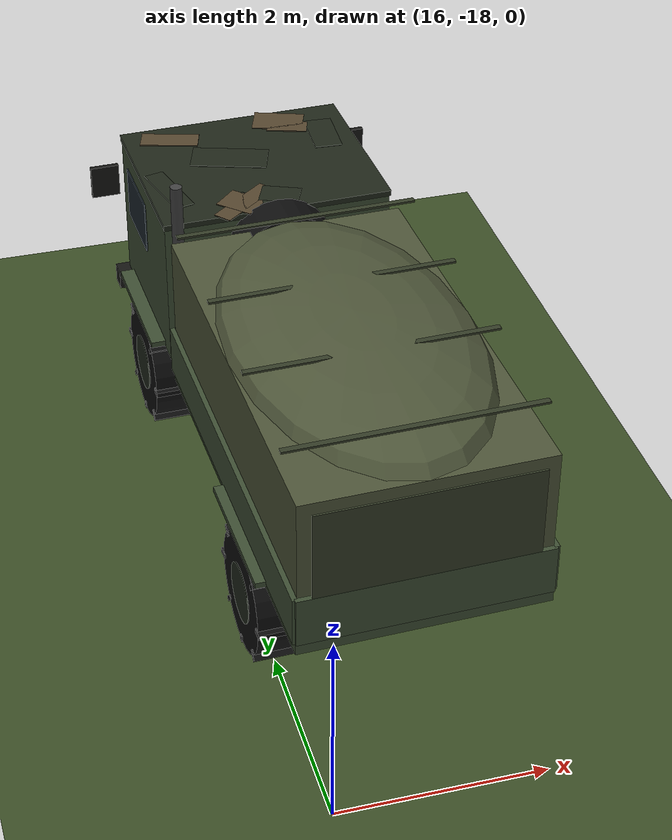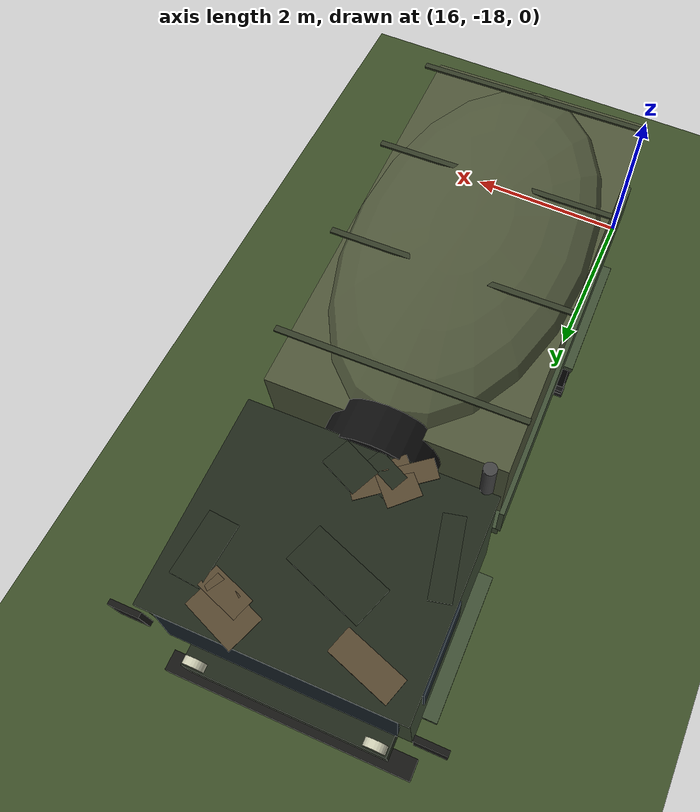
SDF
<sdf version="1.11">
 <world name="hive_base">
  <model name="ground_plane">
   <static>true</static>
   <link name="link">
    <collision name="collision">
     <geometry><plane><normal>0 0 1</normal><size>1000 1000</size></plane></geometry>
     <surface><friction><ode><mu>1.0</mu><mu2>1.0</mu2></ode></friction></surface>
    </collision>
    <visual name="visual">
     <geometry><plane><normal>0 0 1</normal><size>1000 1000</size></plane></geometry>
     <material>
      <ambient>0.23 0.3 0.15 1</ambient>
      <diffuse>0.23 0.3 0.15 1</diffuse>
      <specular>0.05 0.05 0.05 1</specular>
     </material>
    </visual>
   </link>
  </model>
  <model name="tgb40_1">
   <static>true</static>
   <pose>17 -14 0 0 0 1.6</pose>
   <link name="link">
    <visual name="v1">
     <pose>2.35 -1.05 0.6 1.571 0 0</pose>
     <geometry><cylinder><radius>0.6</radius><length>0.45</length></cylinder></geometry>
     <material>
      <ambient>0.05 0.05 0.05 1</ambient>
      <diffuse>0.05 0.05 0.05 1</diffuse>
      <specular>0.05 0.05 0.05 1</specular>
     </material>
    </visual>
    <collision name="c1">
     <pose>2.35 -1.05 0.6 1.571 0 0</pose>
     <geometry><cylinder><radius>0.6</radius><length>0.45</length></cylinder></geometry>
    </collision>
    <visual name="v2">
     <pose>2.35 -1.05 0.6 1.571 0 0</pose>
     <geometry><cylinder><radius>0.3</radius><length>0.47</length></cylinder></geometry>
     <material>
      <ambient>0.12 0.15 0.1 1</ambient>
      <diffuse>0.12 0.15 0.1 1</diffuse>
      <specular>0.05 0.05 0.05 1</specular>
     </material>
    </visual>
    <visual name="v3">
     <pose>2.95 -1.05 0.6 0 -0 0</pose>
     <geometry><box><size>0.12 0.47 0.05</size></box></geometry>
     <material>
      <ambient>0.05 0.05 0.05 1</ambient>
      <diffuse>0.05 0.05 0.05 1</diffuse>
      <specular>0.05 0.05 0.05 1</specular>
     </material>
     <cast_shadows>false</cast_shadows>
    </visual>
    <visual name="v4">
     <pose>2.774 -1.05 1.024 0 -0.785 0</pose>
     <geometry><box><size>0.12 0.47 0.05</size></box></geometry>
     <material>
      <ambient>0.05 0.05 0.05 1</ambient>
      <diffuse>0.05 0.05 0.05 1</diffuse>
      <specular>0.05 0.05 0.05 1</specular>
     </material>
     <cast_shadows>false</cast_shadows>
    </visual>
    <visual name="v5">
     <pose>2.35 -1.05 1.2 0 -1.571 0</pose>
     <geometry><box><size>0.12 0.47 0.05</size></box></geometry>
     <material>
      <ambient>0.05 0.05 0.05 1</ambient>
      <diffuse>0.05 0.05 0.05 1</diffuse>
      <specular>0.05 0.05 0.05 1</specular>
     </material>
     <cast_shadows>false</cast_shadows>
    </visual>
    <visual name="v6">
     <pose>1.926 -1.05 1.024 0 -2.356 0</pose>
     <geometry><box><size>0.12 0.47 0.05</size></box></geometry>
     <material>
      <ambient>0.05 0.05 0.05 1</ambient>
      <diffuse>0.05 0.05 0.05 1</diffuse>
      <specular>0.05 0.05 0.05 1</specular>
     </material>
     <cast_shadows>false</cast_shadows>
    </visual>
    <visual name="v7">
     <pose>1.75 -1.05 0.6 0 -3.142 0</pose>
     <geometry><box><size>0.12 0.47 0.05</size></box></geometry>
     <material>
      <ambient>0.05 0.05 0.05 1</ambient>
      <diffuse>0.05 0.05 0.05 1</diffuse>
      <specular>0.05 0.05 0.05 1</specular>
     </material>
     <cast_shadows>false</cast_shadows>
    </visual>
    <visual name="v8">
     <pose>1.926 -1.05 0.176 0 -3.927 0</pose>
     <geometry><box><size>0.12 0.47 0.05</size></box></geometry>
     <material>
      <ambient>0.05 0.05 0.05 1</ambient>
      <diffuse>0.05 0.05 0.05 1</diffuse>
      <specular>0.05 0.05 0.05 1</specular>
     </material>
     <cast_shadows>false</cast_shadows>
    </visual>
    <visual name="v9">
     <pose>2.35 -1.05 0 0 -4.712 0</pose>
     <geometry><box><size>0.12 0.47 0.05</size></box></geometry>
     <material>
      <ambient>0.05 0.05 0.05 1</ambient>
      <diffuse>0.05 0.05 0.05 1</diffuse>
      <specular>0.05 0.05 0.05 1</specular>
     </material>
     <cast_shadows>false</cast_shadows>
    </visual>
    <visual name="v10">
     <pose>2.774 -1.05 0.176 0 -5.498 0</pose>
     <geometry><box><size>0.12 0.47 0.05</size></box></geometry>
     <material>
      <ambient>0.05 0.05 0.05 1</ambient>
      <diffuse>0.05 0.05 0.05 1</diffuse>
      <specular>0.05 0.05 0.05 1</specular>
     </material>
     <cast_shadows>false</cast_shadows>
    </visual>
    <visual name="v11">
     <pose>2.35 1.05 0.6 1.571 0 0</pose>
     <geometry><cylinder><radius>0.6</radius><length>0.45</length></cylinder></geometry>
     <material>
      <ambient>0.05 0.05 0.05 1</ambient>
      <diffuse>0.05 0.05 0.05 1</diffuse>
      <specular>0.05 0.05 0.05 1</specular>
     </material>
    </visual>
    <collision name="c11">
     <pose>2.35 1.05 0.6 1.571 0 0</pose>
     <geometry><cylinder><radius>0.6</radius><length>0.45</length></cylinder></geometry>
    </collision>
    <visual name="v12">
     <pose>2.35 1.05 0.6 1.571 0 0</pose>
     <geometry><cylinder><radius>0.3</radius><length>0.47</length></cylinder></geometry>
     <material>
      <ambient>0.12 0.15 0.1 1</ambient>
      <diffuse>0.12 0.15 0.1 1</diffuse>
      <specular>0.05 0.05 0.05 1</specular>
     </material>
    </visual>
    <visual name="v13">
     <pose>2.95 1.05 0.6 0 -0 0</pose>
     <geometry><box><size>0.12 0.47 0.05</size></box></geometry>
     <material>
      <ambient>0.05 0.05 0.05 1</ambient>
      <diffuse>0.05 0.05 0.05 1</diffuse>
      <specular>0.05 0.05 0.05 1</specular>
     </material>
     <cast_shadows>false</cast_shadows>
    </visual>
    <visual name="v14">
     <pose>2.774 1.05 1.024 0 -0.785 0</pose>
     <geometry><box><size>0.12 0.47 0.05</size></box></geometry>
     <material>
      <ambient>0.05 0.05 0.05 1</ambient>
      <diffuse>0.05 0.05 0.05 1</diffuse>
      <specular>0.05 0.05 0.05 1</specular>
     </material>
     <cast_shadows>false</cast_shadows>
    </visual>
    <visual name="v15">
     <pose>2.35 1.05 1.2 0 -1.571 0</pose>
     <geometry><box><size>0.12 0.47 0.05</size></box></geometry>
     <material>
      <ambient>0.05 0.05 0.05 1</ambient>
      <diffuse>0.05 0.05 0.05 1</diffuse>
      <specular>0.05 0.05 0.05 1</specular>
     </material>
     <cast_shadows>false</cast_shadows>
    </visual>
    <visual name="v16">
     <pose>1.926 1.05 1.024 0 -2.356 0</pose>
     <geometry><box><size>0.12 0.47 0.05</size></box></geometry>
     <material>
      <ambient>0.05 0.05 0.05 1</ambient>
      <diffuse>0.05 0.05 0.05 1</diffuse>
      <specular>0.05 0.05 0.05 1</specular>
     </material>
     <cast_shadows>false</cast_shadows>
    </visual>
    <visual name="v17">
     <pose>1.75 1.05 0.6 0 -3.142 0</pose>
     <geometry><box><size>0.12 0.47 0.05</size></box></geometry>
     <material>
      <ambient>0.05 0.05 0.05 1</ambient>
      <diffuse>0.05 0.05 0.05 1</diffuse>
      <specular>0.05 0.05 0.05 1</specular>
     </material>
     <cast_shadows>false</cast_shadows>
    </visual>
    <visual name="v18">
     <pose>1.926 1.05 0.176 0 -3.927 0</pose>
     <geometry><box><size>0.12 0.47 0.05</size></box></geometry>
     <material>
      <ambient>0.05 0.05 0.05 1</ambient>
      <diffuse>0.05 0.05 0.05 1</diffuse>
      <specular>0.05 0.05 0.05 1</specular>
     </material>
     <cast_shadows>false</cast_shadows>
    </visual>
    <visual name="v19">
     <pose>2.35 1.05 0 0 -4.712 0</pose>
     <geometry><box><size>0.12 0.47 0.05</size></box></geometry>
     <material>
      <ambient>0.05 0.05 0.05 1</ambient>
      <diffuse>0.05 0.05 0.05 1</diffuse>
      <specular>0.05 0.05 0.05 1</specular>
     </material>
     <cast_shadows>false</cast_shadows>
    </visual>
    <visual name="v20">
     <pose>2.774 1.05 0.176 0 -5.498 0</pose>
     <geometry><box><size>0.12 0.47 0.05</size></box></geometry>
     <material>
      <ambient>0.05 0.05 0.05 1</ambient>
      <diffuse>0.05 0.05 0.05 1</diffuse>
      <specular>0.05 0.05 0.05 1</specular>
     </material>
     <cast_shadows>false</cast_shadows>
    </visual>
    <visual name="v21">
     <pose>-1.6 -1.05 0.6 1.571 0 0</pose>
     <geometry><cylinder><radius>0.6</radius><length>0.45</length></cylinder></geometry>
     <material>
      <ambient>0.05 0.05 0.05 1</ambient>
      <diffuse>0.05 0.05 0.05 1</diffuse>
      <specular>0.05 0.05 0.05 1</specular>
     </material>
    </visual>
    <collision name="c21">
     <pose>-1.6 -1.05 0.6 1.571 0 0</pose>
     <geometry><cylinder><radius>0.6</radius><length>0.45</length></cylinder></geometry>
    </collision>
    <visual name="v22">
     <pose>-1.6 -1.05 0.6 1.571 0 0</pose>
     <geometry><cylinder><radius>0.3</radius><length>0.47</length></cylinder></geometry>
     <material>
      <ambient>0.12 0.15 0.1 1</ambient>
      <diffuse>0.12 0.15 0.1 1</diffuse>
      <specular>0.05 0.05 0.05 1</specular>
     </material>
    </visual>
    <visual name="v23">
     <pose>-1 -1.05 0.6 0 -0 0</pose>
     <geometry><box><size>0.12 0.47 0.05</size></box></geometry>
     <material>
      <ambient>0.05 0.05 0.05 1</ambient>
      <diffuse>0.05 0.05 0.05 1</diffuse>
      <specular>0.05 0.05 0.05 1</specular>
     </material>
     <cast_shadows>false</cast_shadows>
    </visual>
    <visual name="v24">
     <pose>-1.176 -1.05 1.024 0 -0.785 0</pose>
     <geometry><box><size>0.12 0.47 0.05</size></box></geometry>
     <material>
      <ambient>0.05 0.05 0.05 1</ambient>
      <diffuse>0.05 0.05 0.05 1</diffuse>
      <specular>0.05 0.05 0.05 1</specular>
     </material>
     <cast_shadows>false</cast_shadows>
    </visual>
    <visual name="v25">
     <pose>-1.6 -1.05 1.2 0 -1.571 0</pose>
     <geometry><box><size>0.12 0.47 0.05</size></box></geometry>
     <material>
      <ambient>0.05 0.05 0.05 1</ambient>
      <diffuse>0.05 0.05 0.05 1</diffuse>
      <specular>0.05 0.05 0.05 1</specular>
     </material>
     <cast_shadows>false</cast_shadows>
    </visual>
    <visual name="v26">
     <pose>-2.024 -1.05 1.024 0 -2.356 0</pose>
     <geometry><box><size>0.12 0.47 0.05</size></box></geometry>
     <material>
      <ambient>0.05 0.05 0.05 1</ambient>
      <diffuse>0.05 0.05 0.05 1</diffuse>
      <specular>0.05 0.05 0.05 1</specular>
     </material>
     <cast_shadows>false</cast_shadows>
    </visual>
    <visual name="v27">
     <pose>-2.2 -1.05 0.6 0 -3.142 0</pose>
     <geometry><box><size>0.12 0.47 0.05</size></box></geometry>
     <material>
      <ambient>0.05 0.05 0.05 1</ambient>
      <diffuse>0.05 0.05 0.05 1</diffuse>
      <specular>0.05 0.05 0.05 1</specular>
     </material>
     <cast_shadows>false</cast_shadows>
    </visual>
    <visual name="v28">
     <pose>-2.024 -1.05 0.176 0 -3.927 0</pose>
     <geometry><box><size>0.12 0.47 0.05</size></box></geometry>
     <material>
      <ambient>0.05 0.05 0.05 1</ambient>
      <diffuse>0.05 0.05 0.05 1</diffuse>
      <specular>0.05 0.05 0.05 1</specular>
     </material>
     <cast_shadows>false</cast_shadows>
    </visual>
    <visual name="v29">
     <pose>-1.6 -1.05 0 0 -4.712 0</pose>
     <geometry><box><size>0.12 0.47 0.05</size></box></geometry>
     <material>
      <ambient>0.05 0.05 0.05 1</ambient>
      <diffuse>0.05 0.05 0.05 1</diffuse>
      <specular>0.05 0.05 0.05 1</specular>
     </material>
     <cast_shadows>false</cast_shadows>
    </visual>
    <visual name="v30">
     <pose>-1.176 -1.05 0.176 0 -5.498 0</pose>
     <geometry><box><size>0.12 0.47 0.05</size></box></geometry>
     <material>
      <ambient>0.05 0.05 0.05 1</ambient>
      <diffuse>0.05 0.05 0.05 1</diffuse>
      <specular>0.05 0.05 0.05 1</specular>
     </material>
     <cast_shadows>false</cast_shadows>
    </visual>
    <visual name="v31">
     <pose>-1.6 1.05 0.6 1.571 0 0</pose>
     <geometry><cylinder><radius>0.6</radius><length>0.45</length></cylinder></geometry>
     <material>
      <ambient>0.05 0.05 0.05 1</ambient>
      <diffuse>0.05 0.05 0.05 1</diffuse>
      <specular>0.05 0.05 0.05 1</specular>
     </material>
    </visual>
    <collision name="c31">
     <pose>-1.6 1.05 0.6 1.571 0 0</pose>
     <geometry><cylinder><radius>0.6</radius><length>0.45</length></cylinder></geometry>
    </collision>
    <visual name="v32">
     <pose>-1.6 1.05 0.6 1.571 0 0</pose>
     <geometry><cylinder><radius>0.3</radius><length>0.47</length></cylinder></geometry>
     <material>
      <ambient>0.12 0.15 0.1 1</ambient>
      <diffuse>0.12 0.15 0.1 1</diffuse>
      <specular>0.05 0.05 0.05 1</specular>
     </material>
    </visual>
    <visual name="v33">
     <pose>-1 1.05 0.6 0 -0 0</pose>
     <geometry><box><size>0.12 0.47 0.05</size></box></geometry>
     <material>
      <ambient>0.05 0.05 0.05 1</ambient>
      <diffuse>0.05 0.05 0.05 1</diffuse>
      <specular>0.05 0.05 0.05 1</specular>
     </material>
     <cast_shadows>false</cast_shadows>
    </visual>
    <visual name="v34">
     <pose>-1.176 1.05 1.024 0 -0.785 0</pose>
     <geometry><box><size>0.12 0.47 0.05</size></box></geometry>
     <material>
      <ambient>0.05 0.05 0.05 1</ambient>
      <diffuse>0.05 0.05 0.05 1</diffuse>
      <specular>0.05 0.05 0.05 1</specular>
     </material>
     <cast_shadows>false</cast_shadows>
    </visual>
    <visual name="v35">
     <pose>-1.6 1.05 1.2 0 -1.571 0</pose>
     <geometry><box><size>0.12 0.47 0.05</size></box></geometry>
     <material>
      <ambient>0.05 0.05 0.05 1</ambient>
      <diffuse>0.05 0.05 0.05 1</diffuse>
      <specular>0.05 0.05 0.05 1</specular>
     </material>
     <cast_shadows>false</cast_shadows>
    </visual>
    <visual name="v36">
     <pose>-2.024 1.05 1.024 0 -2.356 0</pose>
     <geometry><box><size>0.12 0.47 0.05</size></box></geometry>
     <material>
      <ambient>0.05 0.05 0.05 1</ambient>
      <diffuse>0.05 0.05 0.05 1</diffuse>
      <specular>0.05 0.05 0.05 1</specular>
     </material>
     <cast_shadows>false</cast_shadows>
    </visual>
    <visual name="v37">
     <pose>-2.2 1.05 0.6 0 -3.142 0</pose>
     <geometry><box><size>0.12 0.47 0.05</size></box></geometry>
     <material>
      <ambient>0.05 0.05 0.05 1</ambient>
      <diffuse>0.05 0.05 0.05 1</diffuse>
      <specular>0.05 0.05 0.05 1</specular>
     </material>
     <cast_shadows>false</cast_shadows>
    </visual>
    <visual name="v38">
     <pose>-2.024 1.05 0.176 0 -3.927 0</pose>
     <geometry><box><size>0.12 0.47 0.05</size></box></geometry>
     <material>
      <ambient>0.05 0.05 0.05 1</ambient>
      <diffuse>0.05 0.05 0.05 1</diffuse>
      <specular>0.05 0.05 0.05 1</specular>
     </material>
     <cast_shadows>false</cast_shadows>
    </visual>
    <visual name="v39">
     <pose>-1.6 1.05 0 0 -4.712 0</pose>
     <geometry><box><size>0.12 0.47 0.05</size></box></geometry>
     <material>
      <ambient>0.05 0.05 0.05 1</ambient>
      <diffuse>0.05 0.05 0.05 1</diffuse>
      <specular>0.05 0.05 0.05 1</specular>
     </material>
     <cast_shadows>false</cast_shadows>
    </visual>
    <visual name="v40">
     <pose>-1.176 1.05 0.176 0 -5.498 0</pose>
     <geometry><box><size>0.12 0.47 0.05</size></box></geometry>
     <material>
      <ambient>0.05 0.05 0.05 1</ambient>
      <diffuse>0.05 0.05 0.05 1</diffuse>
      <specular>0.05 0.05 0.05 1</specular>
     </material>
     <cast_shadows>false</cast_shadows>
    </visual>
    <visual name="v41">
     <pose>0.3 0 1 0 0 0</pose>
     <geometry><box><size>6.2 0.9 0.3</size></box></geometry>
     <material>
      <ambient>0.08 0.08 0.07 1</ambient>
      <diffuse>0.08 0.08 0.07 1</diffuse>
      <specular>0.05 0.05 0.05 1</specular>
     </material>
    </visual>
    <collision name="c41">
     <pose>0.3 0 1 0 0 0</pose>
     <geometry><box><size>6.2 0.9 0.3</size></box></geometry>
    </collision>
    <visual name="v42">
     <pose>2.35 0 0.6 1.571 0 0</pose>
     <geometry><cylinder><radius>0.12</radius><length>2.1</length></cylinder></geometry>
     <material>
      <ambient>0.08 0.08 0.07 1</ambient>
      <diffuse>0.08 0.08 0.07 1</diffuse>
      <specular>0.05 0.05 0.05 1</specular>
     </material>
    </visual>
    <visual name="v43">
     <pose>-1.6 0 0.6 1.571 0 0</pose>
     <geometry><cylinder><radius>0.12</radius><length>2.1</length></cylinder></geometry>
     <material>
      <ambient>0.08 0.08 0.07 1</ambient>
      <diffuse>0.08 0.08 0.07 1</diffuse>
      <specular>0.05 0.05 0.05 1</specular>
     </material>
    </visual>
    <visual name="v44">
     <pose>2.35 -1.05 1.3 0 0 0</pose>
     <geometry><box><size>1.45 0.55 0.06</size></box></geometry>
     <material>
      <ambient>0.24 0.3 0.2 1</ambient>
      <diffuse>0.24 0.3 0.2 1</diffuse>
      <specular>0.05 0.05 0.05 1</specular>
     </material>
    </visual>
    <visual name="v45">
     <pose>2.35 1.05 1.3 0 0 0</pose>
     <geometry><box><size>1.45 0.55 0.06</size></box></geometry>
     <material>
      <ambient>0.24 0.3 0.2 1</ambient>
      <diffuse>0.24 0.3 0.2 1</diffuse>
      <specular>0.05 0.05 0.05 1</specular>
     </material>
    </visual>
    <visual name="v46">
     <pose>-1.6 -1.05 1.3 0 0 0</pose>
     <geometry><box><size>1.45 0.55 0.06</size></box></geometry>
     <material>
      <ambient>0.24 0.3 0.2 1</ambient>
      <diffuse>0.24 0.3 0.2 1</diffuse>
      <specular>0.05 0.05 0.05 1</specular>
     </material>
    </visual>
    <visual name="v47">
     <pose>-1.6 1.05 1.3 0 0 0</pose>
     <geometry><box><size>1.45 0.55 0.06</size></box></geometry>
     <material>
      <ambient>0.24 0.3 0.2 1</ambient>
      <diffuse>0.24 0.3 0.2 1</diffuse>
      <specular>0.05 0.05 0.05 1</specular>
     </material>
    </visual>
    <visual name="v48">
     <pose>2.35 0 2.025 0 0 0</pose>
     <geometry><box><size>1.9 2.35 1.55</size></box></geometry>
     <material>
      <ambient>0.24 0.3 0.2 1</ambient>
      <diffuse>0.24 0.3 0.2 1</diffuse>
      <specular>0.05 0.05 0.05 1</specular>
     </material>
    </visual>
    <collision name="c48">
     <pose>2.35 0 2.025 0 0 0</pose>
     <geometry><box><size>1.9 2.35 1.55</size></box></geometry>
    </collision>
    <visual name="v49">
     <pose>3.4 0 1.3 0 0 0</pose>
     <geometry><box><size>0.25 2.05 0.45</size></box></geometry>
     <material>
      <ambient>0.12 0.15 0.1 1</ambient>
      <diffuse>0.12 0.15 0.1 1</diffuse>
      <specular>0.05 0.05 0.05 1</specular>
     </material>
    </visual>
    <visual name="v50">
     <pose>3.5 0 1 0 0 0</pose>
     <geometry><box><size>0.2 2.55 0.2</size></box></geometry>
     <material>
      <ambient>0.08 0.08 0.07 1</ambient>
      <diffuse>0.08 0.08 0.07 1</diffuse>
      <specular>0.05 0.05 0.05 1</specular>
     </material>
    </visual>
    <visual name="v51">
     <pose>3.31 0 2.375 0 -0.08 0</pose>
     <geometry><box><size>0.05 2.15 0.65</size></box></geometry>
     <material>
      <ambient>0.1 0.14 0.17 1</ambient>
      <diffuse>0.1 0.14 0.17 1</diffuse>
      <specular>0.05 0.05 0.05 1</specular>
     </material>
    </visual>
    <visual name="v52">
     <pose>2.65 -1.18 2.325 0 0 0</pose>
     <geometry><box><size>0.8 0.02 0.55</size></box></geometry>
     <material>
      <ambient>0.1 0.14 0.17 1</ambient>
      <diffuse>0.1 0.14 0.17 1</diffuse>
      <specular>0.05 0.05 0.05 1</specular>
     </material>
    </visual>
    <visual name="v53">
     <pose>3.35 -1.375 2.325 0 0 0</pose>
     <geometry><box><size>0.05 0.3 0.35</size></box></geometry>
     <material>
      <ambient>0.08 0.08 0.07 1</ambient>
      <diffuse>0.08 0.08 0.07 1</diffuse>
      <specular>0.05 0.05 0.05 1</specular>
     </material>
    </visual>
    <visual name="v54">
     <pose>3.47 -0.9 1.55 0 1.571 0</pose>
     <geometry><cylinder><radius>0.11</radius><length>0.08</length></cylinder></geometry>
     <material>
      <ambient>0.8 0.8 0.7 1</ambient>
      <diffuse>0.8 0.8 0.7 1</diffuse>
      <specular>0.05 0.05 0.05 1</specular>
     </material>
    </visual>
    <visual name="v55">
     <pose>2.65 1.18 2.325 0 0 0</pose>
     <geometry><box><size>0.8 0.02 0.55</size></box></geometry>
     <material>
      <ambient>0.1 0.14 0.17 1</ambient>
      <diffuse>0.1 0.14 0.17 1</diffuse>
      <specular>0.05 0.05 0.05 1</specular>
     </material>
    </visual>
    <visual name="v56">
     <pose>3.35 1.375 2.325 0 0 0</pose>
     <geometry><box><size>0.05 0.3 0.35</size></box></geometry>
     <material>
      <ambient>0.08 0.08 0.07 1</ambient>
      <diffuse>0.08 0.08 0.07 1</diffuse>
      <specular>0.05 0.05 0.05 1</specular>
     </material>
    </visual>
    <visual name="v57">
     <pose>3.47 0.9 1.55 0 1.571 0</pose>
     <geometry><cylinder><radius>0.11</radius><length>0.08</length></cylinder></geometry>
     <material>
      <ambient>0.8 0.8 0.7 1</ambient>
      <diffuse>0.8 0.8 0.7 1</diffuse>
      <specular>0.05 0.05 0.05 1</specular>
     </material>
    </visual>
    <visual name="v58">
     <pose>2.35 0 2.83 0 0 0</pose>
     <geometry><box><size>1.95 2.37 0.06</size></box></geometry>
     <material>
      <ambient>0.12 0.15 0.1 1</ambient>
      <diffuse>0.12 0.15 0.1 1</diffuse>
      <specular>0.05 0.05 0.05 1</specular>
     </material>
    </visual>
    <visual name="v59">
     <pose>2.03 0.968 2.87 0 0 0.212</pose>
     <geometry><box><size>0.736 0.202 0.01</size></box></geometry>
     <material>
      <ambient>0.12 0.15 0.1 1</ambient>
      <diffuse>0.12 0.15 0.1 1</diffuse>
      <specular>0.05 0.05 0.05 1</specular>
     </material>
     <cast_shadows>false</cast_shadows>
    </visual>
    <visual name="v60">
     <pose>1.577 0.297 2.87 0 0 2.226</pose>
     <geometry><box><size>0.759 0.194 0.01</size></box></geometry>
     <material>
      <ambient>0.33 0.27 0.18 1</ambient>
      <diffuse>0.33 0.27 0.18 1</diffuse>
      <specular>0.05 0.05 0.05 1</specular>
     </material>
     <cast_shadows>false</cast_shadows>
    </visual>
    <visual name="v61">
     <pose>1.572 0.188 2.87 0 0 1.116</pose>
     <geometry><box><size>0.343 0.276 0.01</size></box></geometry>
     <material>
      <ambient>0.12 0.15 0.1 1</ambient>
      <diffuse>0.12 0.15 0.1 1</diffuse>
      <specular>0.05 0.05 0.05 1</specular>
     </material>
     <cast_shadows>false</cast_shadows>
    </visual>
    <visual name="v62">
     <pose>2.715 -0.876 2.87 0 0 3.058</pose>
     <geometry><box><size>0.585 0.29 0.01</size></box></geometry>
     <material>
      <ambient>0.12 0.15 0.1 1</ambient>
      <diffuse>0.12 0.15 0.1 1</diffuse>
      <specular>0.05 0.05 0.05 1</specular>
     </material>
     <cast_shadows>false</cast_shadows>
    </visual>
    <visual name="v63">
     <pose>1.62 -0.084 2.87 0 0 1.138</pose>
     <geometry><box><size>0.402 0.287 0.01</size></box></geometry>
     <material>
      <ambient>0.12 0.15 0.1 1</ambient>
      <diffuse>0.12 0.15 0.1 1</diffuse>
      <specular>0.05 0.05 0.05 1</specular>
     </material>
     <cast_shadows>false</cast_shadows>
    </visual>
    <visual name="v64">
     <pose>3.102 -0.493 2.87 0 0 1.201</pose>
     <geometry><box><size>0.531 0.341 0.01</size></box></geometry>
     <material>
      <ambient>0.33 0.27 0.18 1</ambient>
      <diffuse>0.33 0.27 0.18 1</diffuse>
      <specular>0.05 0.05 0.05 1</specular>
     </material>
     <cast_shadows>false</cast_shadows>
    </visual>
    <visual name="v65">
     <pose>2.493 0.209 2.87 0 0 1.224</pose>
     <geometry><box><size>0.792 0.378 0.01</size></box></geometry>
     <material>
      <ambient>0.12 0.15 0.1 1</ambient>
      <diffuse>0.12 0.15 0.1 1</diffuse>
      <specular>0.05 0.05 0.05 1</specular>
     </material>
     <cast_shadows>false</cast_shadows>
    </visual>
    <visual name="v66">
     <pose>2.966 -0.553 2.87 0 0 1.238</pose>
     <geometry><box><size>0.423 0.207 0.01</size></box></geometry>
     <material>
      <ambient>0.33 0.27 0.18 1</ambient>
      <diffuse>0.33 0.27 0.18 1</diffuse>
      <specular>0.05 0.05 0.05 1</specular>
     </material>
     <cast_shadows>false</cast_shadows>
    </visual>
    <visual name="v67">
     <pose>1.583 0.332 2.87 0 0 2.33</pose>
     <geometry><box><size>0.315 0.397 0.01</size></box></geometry>
     <material>
      <ambient>0.33 0.27 0.18 1</ambient>
      <diffuse>0.33 0.27 0.18 1</diffuse>
      <specular>0.05 0.05 0.05 1</specular>
     </material>
     <cast_shadows>false</cast_shadows>
    </visual>
    <visual name="v68">
     <pose>3.043 0.713 2.87 0 0 1.249</pose>
     <geometry><box><size>0.605 0.243 0.01</size></box></geometry>
     <material>
      <ambient>0.33 0.27 0.18 1</ambient>
      <diffuse>0.33 0.27 0.18 1</diffuse>
      <specular>0.05 0.05 0.05 1</specular>
     </material>
     <cast_shadows>false</cast_shadows>
    </visual>
    <visual name="v69">
     <pose>-1 0 1.25 0 0 0</pose>
     <geometry><box><size>4.3 2.4 0.15</size></box></geometry>
     <material>
      <ambient>0.24 0.3 0.2 1</ambient>
      <diffuse>0.24 0.3 0.2 1</diffuse>
      <specular>0.05 0.05 0.05 1</specular>
     </material>
    </visual>
    <collision name="c69">
     <pose>-1 0 1.25 0 0 0</pose>
     <geometry><box><size>4.3 2.4 0.15</size></box></geometry>
    </collision>
    <visual name="v70">
     <pose>-1 -1.2 1.55 0 0 0</pose>
     <geometry><box><size>4.3 0.05 0.5</size></box></geometry>
     <material>
      <ambient>0.24 0.3 0.2 1</ambient>
      <diffuse>0.24 0.3 0.2 1</diffuse>
      <specular>0.05 0.05 0.05 1</specular>
     </material>
    </visual>
    <visual name="v71">
     <pose>-1 1.2 1.55 0 0 0</pose>
     <geometry><box><size>4.3 0.05 0.5</size></box></geometry>
     <material>
      <ambient>0.24 0.3 0.2 1</ambient>
      <diffuse>0.24 0.3 0.2 1</diffuse>
      <specular>0.05 0.05 0.05 1</specular>
     </material>
    </visual>
    <visual name="v72">
     <pose>-3.15 0 1.55 0 0 0</pose>
     <geometry><box><size>0.05 2.4 0.5</size></box></geometry>
     <material>
      <ambient>0.24 0.3 0.2 1</ambient>
      <diffuse>0.24 0.3 0.2 1</diffuse>
      <specular>0.05 0.05 0.05 1</specular>
     </material>
    </visual>
    <visual name="v73">
     <pose>-1 0 2.3 0 0 0</pose>
     <geometry><box><size>4.25 2.35 1</size></box></geometry>
     <material>
      <ambient>0.3 0.33 0.22 1</ambient>
      <diffuse>0.3 0.33 0.22 1</diffuse>
      <specular>0.05 0.05 0.05 1</specular>
     </material>
    </visual>
    <collision name="c73">
     <pose>-1 0 2.3 0 0 0</pose>
     <geometry><box><size>4.25 2.35 1</size></box></geometry>
    </collision>
    <visual name="v74">
     <pose>-1 0 2.8 0 0 0</pose>
     <geometry><ellipsoid><radii>2.125 1.175 0.35</radii></ellipsoid></geometry>
     <material>
      <ambient>0.3 0.33 0.22 1</ambient>
      <diffuse>0.3 0.33 0.22 1</diffuse>
      <specular>0.05 0.05 0.05 1</specular>
     </material>
    </visual>
    <visual name="v75">
     <pose>-2.75 0 3.1 0 0 0</pose>
     <geometry><box><size>0.06 2.4 0.02</size></box></geometry>
     <material>
      <ambient>0.2 0.23 0.15 1</ambient>
      <diffuse>0.2 0.23 0.15 1</diffuse>
      <specular>0.05 0.05 0.05 1</specular>
     </material>
     <cast_shadows>false</cast_shadows>
    </visual>
    <visual name="v76">
     <pose>-1.583 0 3.1 0 0 0</pose>
     <geometry><box><size>0.06 2.4 0.02</size></box></geometry>
     <material>
      <ambient>0.2 0.23 0.15 1</ambient>
      <diffuse>0.2 0.23 0.15 1</diffuse>
      <specular>0.05 0.05 0.05 1</specular>
     </material>
     <cast_shadows>false</cast_shadows>
    </visual>
    <visual name="v77">
     <pose>-0.417 0 3.1 0 0 0</pose>
     <geometry><box><size>0.06 2.4 0.02</size></box></geometry>
     <material>
      <ambient>0.2 0.23 0.15 1</ambient>
      <diffuse>0.2 0.23 0.15 1</diffuse>
      <specular>0.05 0.05 0.05 1</specular>
     </material>
     <cast_shadows>false</cast_shadows>
    </visual>
    <visual name="v78">
     <pose>0.75 0 3.1 0 0 0</pose>
     <geometry><box><size>0.06 2.4 0.02</size></box></geometry>
     <material>
      <ambient>0.2 0.23 0.15 1</ambient>
      <diffuse>0.2 0.23 0.15 1</diffuse>
      <specular>0.05 0.05 0.05 1</specular>
     </material>
     <cast_shadows>false</cast_shadows>
    </visual>
    <visual name="v79">
     <pose>-3.16 0 2.25 0 0 0</pose>
     <geometry><box><size>0.02 2.1 0.9</size></box></geometry>
     <material>
      <ambient>0.2 0.23 0.15 1</ambient>
      <diffuse>0.2 0.23 0.15 1</diffuse>
      <specular>0.05 0.05 0.05 1</specular>
     </material>
    </visual>
    <visual name="v80">
     <pose>1.2 0 2.4 0 1.571 0</pose>
     <geometry><cylinder><radius>0.55</radius><length>0.4</length></cylinder></geometry>
     <material>
      <ambient>0.05 0.05 0.05 1</ambient>
      <diffuse>0.05 0.05 0.05 1</diffuse>
      <specular>0.05 0.05 0.05 1</specular>
     </material>
    </visual>
    <visual name="v81">
     <pose>1.35 1.05 2.4 0 0 0</pose>
     <geometry><cylinder><radius>0.06</radius><length>1.8</length></cylinder></geometry>
     <material>
      <ambient>0.25 0.25 0.25 1</ambient>
      <diffuse>0.25 0.25 0.25 1</diffuse>
      <specular>0.05 0.05 0.05 1</specular>
     </material>
    </visual>
   </link>
  </model>
 </world>
</sdf>
